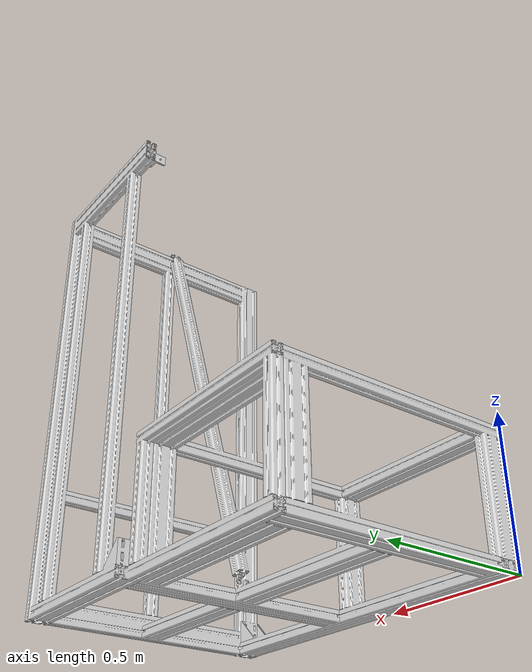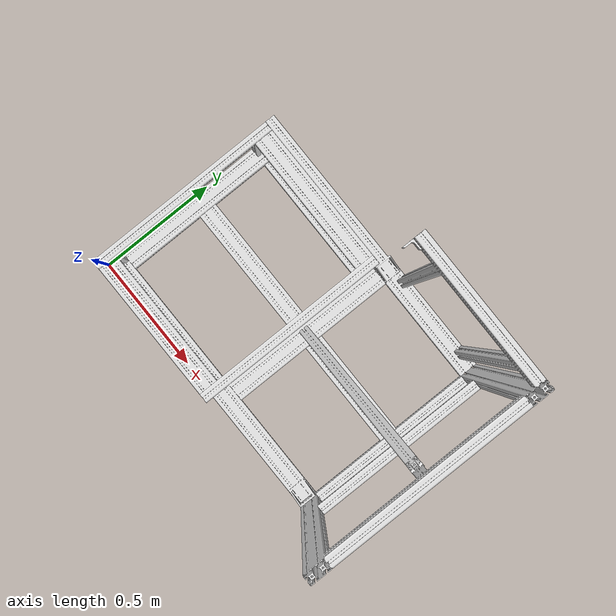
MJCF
<mujoco model="ivr_tasktrainer_frame">
  <default>
    <default class="visual">
      <geom group="2" type="mesh" contype="0" conaffinity="0"/>
    </default>
    <default class="collision">
      <geom group="3" type="mesh"/>
    </default>
  </default>
  <asset>
    <material name="mtl_ivr_tasktrainer_frame" specular="0.20000000000000004" shininess="1.0" rgba="0.85098039 0.85098039 0.85098039 1.0"/>
    <mesh file="ivr_tasktrainer_frame.obj"/>
  </asset>
  <worldbody>
    <body name="ivr_tasktrainer_frame">
      <geom material="mtl_ivr_tasktrainer_frame" mesh="ivr_tasktrainer_frame" class="visual"/>
      <geom mesh="ivr_tasktrainer_frame" class="collision"/>
    </body>
  </worldbody>
</mujoco>
